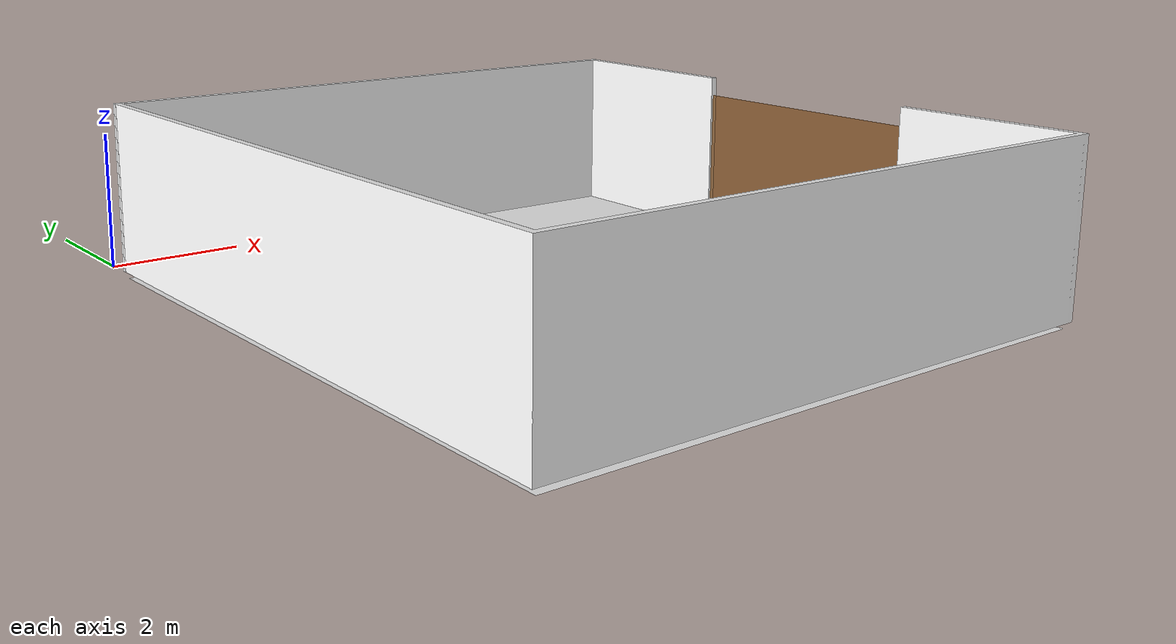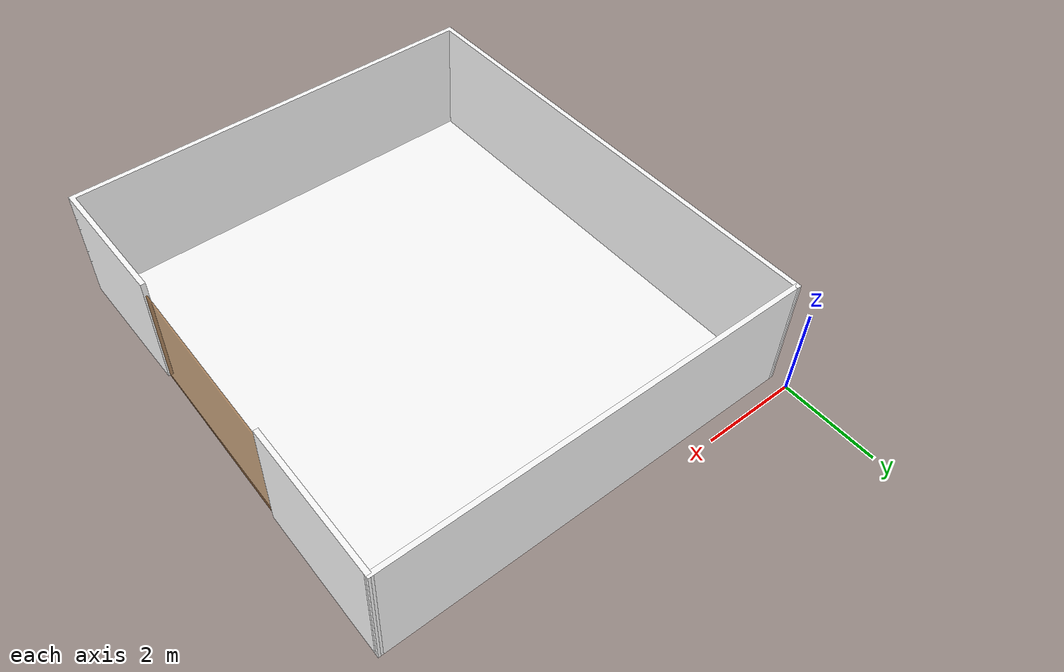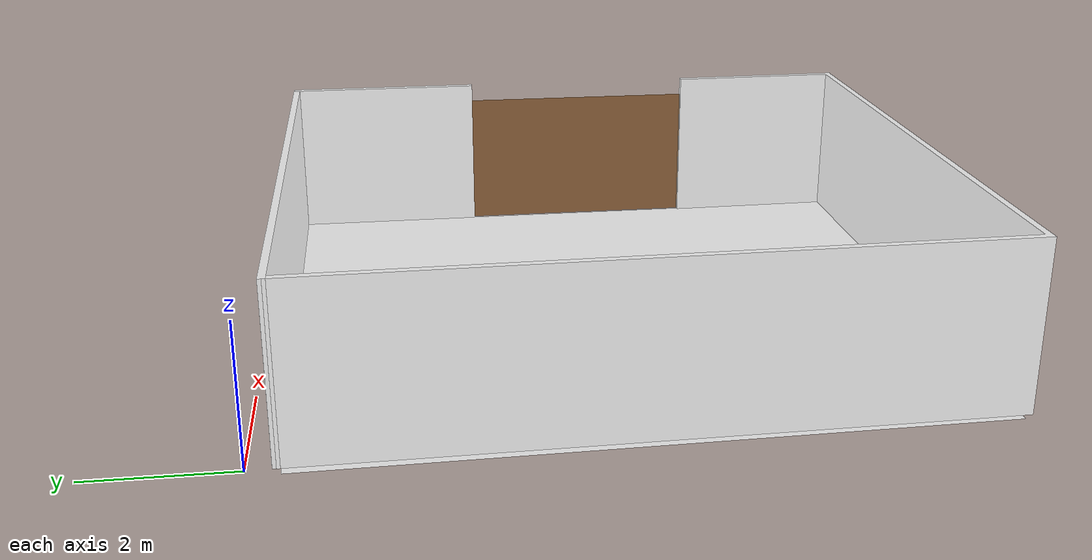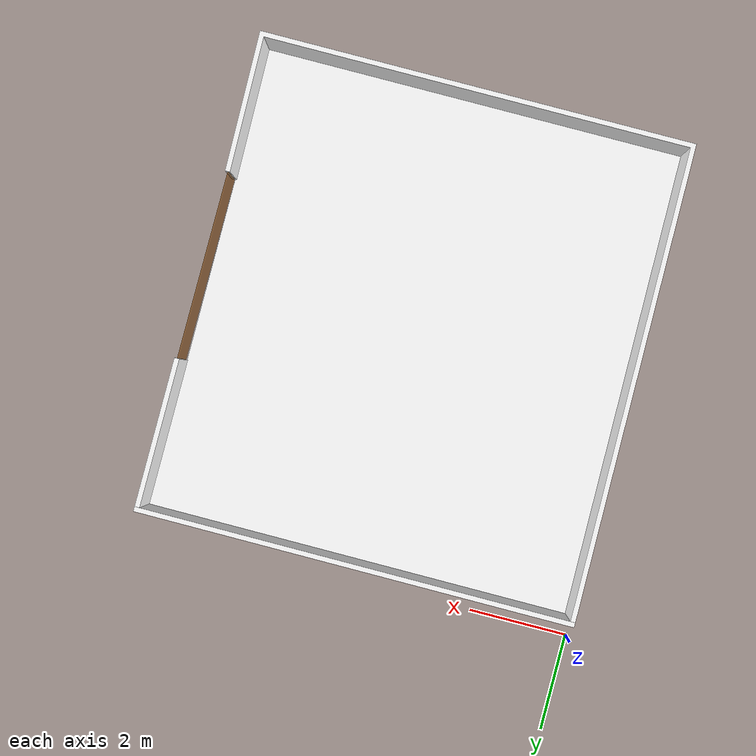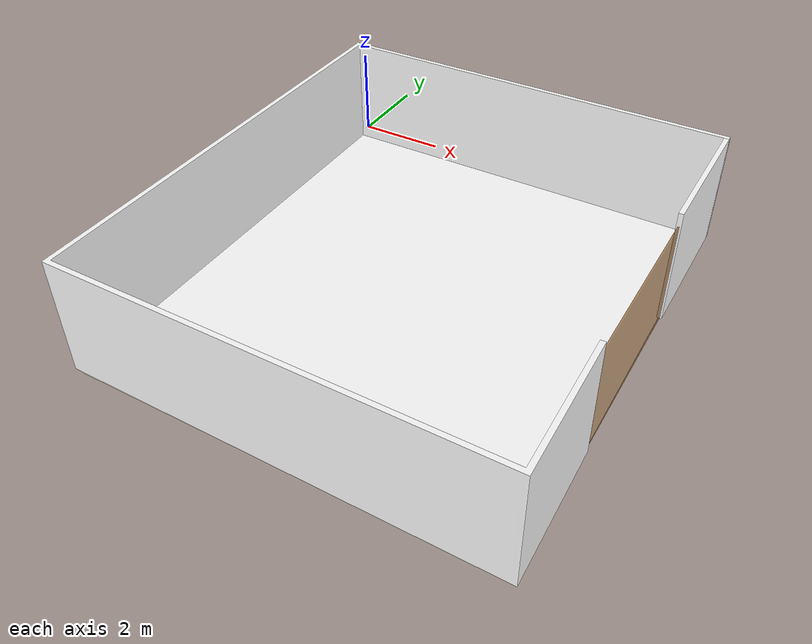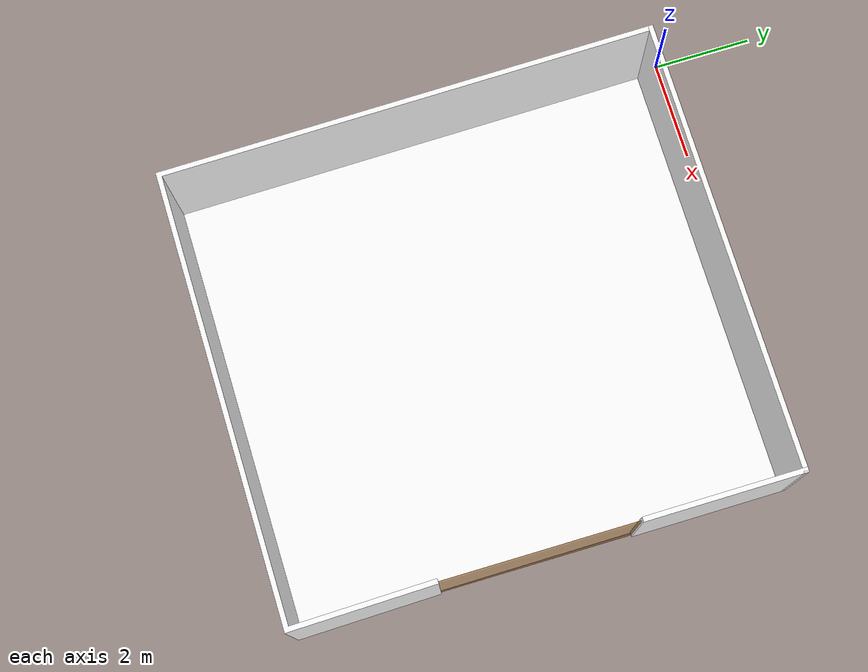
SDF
<sdf version="1.7">
 <world name="world">
  <scene><ambient>0.8 0.8 0.8 1.0</ambient><background>0 0 0</background><grid>false</grid></scene>
  <include><uri>model://sun</uri></include>
  <model name="Door1">
   <pose>8.930374146440238 -5.396955122925636 0.0 0 0 1.5626281948119596</pose>
   <link name="right">
    <pose>0 0 1.11 0 0 0</pose>
    <visual name="right_visual">
     <geometry><box><size>3.9110329819682383 0.03 2.2</size></box></geometry>
     <material><ambient>0.5 0.25 0 0.6</ambient><diffuse>0.5 0.25 0 0.6</diffuse></material>
    </visual>
    <collision name="right_collision">
     <geometry><box><size>3.9110329819682383 0.03 2.2</size></box></geometry>
     <surface><contact><collide_bitmask>0x02</collide_bitmask></contact></surface>
    </collision>
    <inertial>
     <mass>50.0</mass>
     <inertia><ixx>20.17041666666667</ixx><iyy>83.90074577518072</iyy><izz>63.73782910851405</izz></inertia>
    </inertial>
   </link>
   <joint name="right_joint" type="revolute">
    <parent>world</parent>
    <child>right</child>
    <axis><xyz>0 0 -1</xyz><limit><lower>0</lower><upper>1.57</upper></limit></axis>
    <pose>1.960516490984119 0 0 0 0 0</pose>
   </joint>
   <plugin name="door" filename="libdoor.so">
    <v_max_door>0.5</v_max_door>
    <a_max_door>0.3</a_max_door>
    <a_nom_door>0.15</a_nom_door>
    <dx_min_door>0.01</dx_min_door>
    <f_max_door>500.0</f_max_door>
    <door name="Door1" type="SwingDoor" left_joint_name="empty_joint" right_joint_name="right_joint"/>
   </plugin>
  </model>
  <include><name>Floorplan_L1</name><uri>model://Floorplan_L1</uri></include>
  <rmf_charger_waypoints name="charger_waypoints">
   <rmf_vertex name="Point2" x="3.041064602454435" y="-2.9083590092543052" level="L1"/>
   <rmf_vertex name="Point1" x="6.705901060575105" y="-2.860368787122549" level="L1"/>
   <rmf_vertex name="Point3" x="6.7378777033218435" y="-7.741479538155104" level="L1"/>
   <rmf_vertex name="Point4" x="3.1370955627412433" y="-7.741479538155104" level="L1"/>
  </rmf_charger_waypoints>
 </world>
</sdf>

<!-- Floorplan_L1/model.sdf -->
<sdf version="1.7">
  <model name="Floorplan_L1">
    <static>true</static>
    <link name="floor_1">
      <visual name="visual">
        <geometry>
          <mesh>
            <uri>model://Floorplan_L1/meshes/floor_1.obj</uri>
          </mesh>
        </geometry>
        <material>
          <diffuse>1.0 1.0 1.0</diffuse>
          <specular>0.1 0.1 0.1</specular>
          <pbr>
            <metal>
              <metalness>0.0</metalness>
              <albedo_map>model://Floorplan_L1/meshes/blue_linoleum.png</albedo_map>
            </metal>
          </pbr>
          <script>
            <uri>model://Floorplan_L1/meshes/</uri>
            <name>floor_1_Diffuse</name>
          </script>
        </material>
      </visual>
      <collision name="collision">
        <geometry>
          <mesh>
            <uri>model://Floorplan_L1/meshes/floor_1.obj</uri>
          </mesh>
        </geometry>
        <surface>
          <contact>
            <collide_bitmask>0x01</collide_bitmask>
          </contact>
        </surface>
      </collision>
    </link>
    <link name="wall_1">
      <visual name="wall_1">
        <geometry>
          <mesh>
            <uri>model://Floorplan_L1/meshes/wall_1.obj</uri>
          </mesh>
        </geometry>
        <transparency>0.0</transparency>
        <material>
          <diffuse>1.0 1.0 1.0</diffuse>
          <specular>0.1 0.1 0.1</specular>
          <pbr>
            <metal>
              <metalness>0.0</metalness>
              <albedo_map>model://Floorplan_L1/meshes/wall_white.png</albedo_map>
            </metal>
          </pbr>
          <script>
            <uri>model://Floorplan_L1/meshes/</uri>
            <name>wall_1_Diffuse</name>
          </script>
        </material>
      </visual>
      <collision name="collision">
        <geometry>
          <mesh>
            <uri>model://Floorplan_L1/meshes/wall_1.obj</uri>
          </mesh>
        </geometry>
        <surface>
          <contact>
            <collide_bitmask>0x01</collide_bitmask>
          </contact>
        </surface>
      </collision>
      <pose>0.014318309953443631 -0.4458826622784493 0 0 0 0</pose>
    </link>
    <link name="wall_2">
      <visual name="wall_2">
        <geometry>
          <mesh>
            <uri>model://Floorplan_L1/meshes/wall_2.obj</uri>
          </mesh>
        </geometry>
        <transparency>0.0</transparency>
        <material>
          <diffuse>1.0 1.0 1.0</diffuse>
          <specular>0.1 0.1 0.1</specular>
          <pbr>
            <metal>
              <metalness>0.0</metalness>
              <albedo_map>model://Floorplan_L1/meshes/default.png</albedo_map>
            </metal>
          </pbr>
          <script>
            <uri>model://Floorplan_L1/meshes/</uri>
            <name>wall_2_Diffuse</name>
          </script>
        </material>
      </visual>
      <collision name="collision">
        <geometry>
          <mesh>
            <uri>model://Floorplan_L1/meshes/wall_2.obj</uri>
          </mesh>
        </geometry>
        <surface>
          <contact>
            <collide_bitmask>0x01</collide_bitmask>
          </contact>
        </surface>
      </collision>
      <pose>0.013999121286355512 -10.17639619424061 0 0 0 0</pose>
    </link>
  </model>
</sdf>
